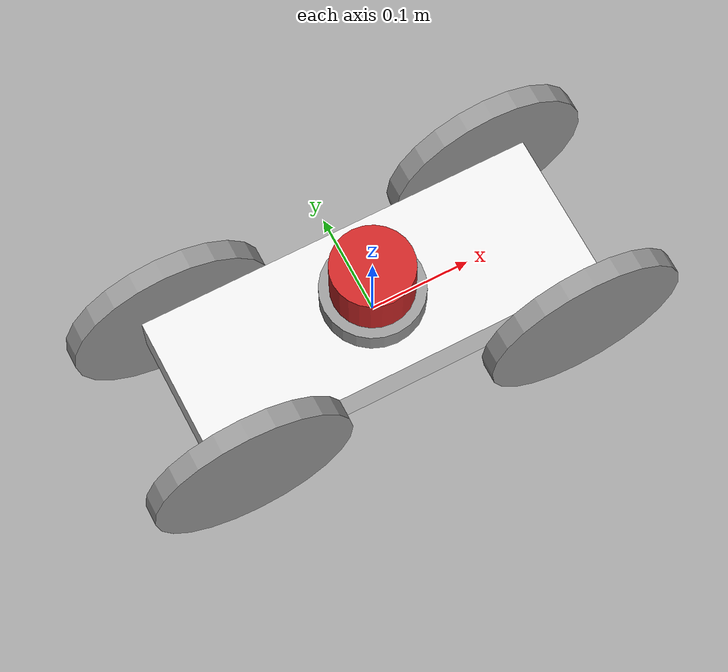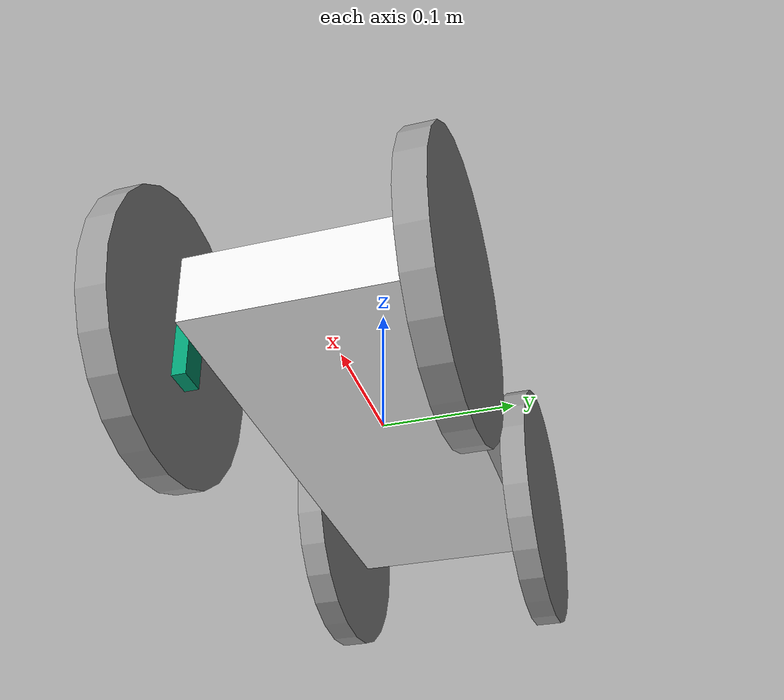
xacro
<?xml version="1.0"?>
<robot xmlns:xacro="http://www.ros.org/wiki/xacro" name="rover">
  <xacro:property name="wheel_radius" value="0.10" />
  <xacro:property name="wheel_width" value="0.02" />
  <xacro:property name="body_height" value="0.05" />
  <xacro:property name="body_width" value="0.15" />
  <xacro:property name="body_length" value="0.4" />
  <xacro:property name="leg_height" value="0.05" />
  <xacro:property name="leg_width" value="0.02" />
  <xacro:property name="leg_length" value="0.02" />

 <gazebo reference="body">
    <material>Gazebo/White</material>
    <mu1>0.2</mu1>
    <mu2>0.2</mu2>
 </gazebo>

  <link name="body">
    <visual>
      <geometry>
        <box size="${body_length} ${body_width} ${body_height}"/>
      </geometry>
    </visual>

    <collision>
      <geometry>
        <box size="${body_length} ${body_width} ${body_height}"/>
      </geometry>
    </collision>

    <inertial>
      <mass value="5"/>
      <inertia ixx="${(5/12) * (body_width * body_width + body_height* body_height)}" ixy="0" ixz="0" iyy="${(5/12) * (body_length * body_length + body_height * body_height)}" iyz="0" izz="${(5/12) * (body_width * body_width + body_length * body_length)}" />
    </inertial>
  </link>

  <link name="lLeg">
    <visual>
      <geometry>
        <box size="${leg_length} ${leg_width} ${leg_height}"/>
      </geometry>
    </visual>

    <collision>
      <geometry>
        <box size="${leg_length} ${leg_width} ${leg_height}"/>
      </geometry>
    </collision>

    <inertial>
      <mass value="1"/>
      <inertia ixx="${(1/12) * (leg_width * leg_width + leg_height* leg_height)}" ixy="0" ixz="0" iyy="${(1/12) * (leg_length * leg_length + leg_height * leg_height)}" iyz="0" izz="${(1/12) * (leg_width * leg_width + leg_length * leg_length)}" />
    </inertial>
  </link>

  <joint name="lDifJoint" type="continuous">
    <parent link="body"/>
    <child link="lLeg"/>
    <axis xyz="0 0 1"/>
    <origin xyz="${body_length/2 - 0.03} ${body_width/2 + wheel_width/2} -${body_height/2}"/>
  </joint>

  <link name="rLeg">
    <visual>
      <geometry>
        <box size="${leg_length} ${leg_width} ${leg_height}"/>
      </geometry>
    </visual>

    <collision>
      <geometry>
        <box size="${leg_length} ${leg_width} ${leg_height}"/>
      </geometry>
    </collision>

    <inertial>
      <mass value="1"/>
      <inertia ixx="${(1/12) * (leg_width * leg_width + leg_height* leg_height)}" ixy="0" ixz="0" iyy="${(1/12) * (leg_length * leg_length + leg_height * leg_height)}" iyz="0" izz="${(1/12) * (leg_width * leg_width + leg_length * leg_length)}" />
    </inertial>
  </link>

  <joint name="rDifJoint" type="continuous">
    <parent link="body"/>
    <child link="rLeg"/>
    <axis xyz="0 0 1"/>
    <origin xyz="${body_length/2 - 0.03} -${body_width/2 + wheel_width/2} -${body_height/2}"/>
  </joint>

  <xacro:macro name="wheel_link" params="name radius width mass">
    <gazebo reference="${name}">
      <material>Gazebo/Grey</material>
      <mu1>0.84</mu1>
      <mu2>0.84</mu2>
   </gazebo>

    <link name="${name}">
      <visual>
        <geometry>
          <cylinder length="${width}" radius="${radius}"/>
        </geometry>
      </visual>

      <collision>
        <geometry>
          <cylinder length="${width}" radius="${radius}"/>
        </geometry>
      </collision>

      <inertial>
        <mass value="${mass}"/>
        <inertia ixx="${(1/12) * mass * (3 * radius * radius + width * width)}" ixy="0" ixz="0" iyy="${(1/12) * mass * (3 * radius * radius + width * width)}" iyz="0" izz="${(1/2) * mass * radius * radius}"/>
      </inertial>
    </link>
  </xacro:macro>

  <xacro:wheel_link name="wFL" radius="${wheel_radius}" width="${wheel_width}" mass="2"/>

  <joint name="jFL" type="continuous">
    <parent link="lLeg"/>
    <child link="wFL"/>
    <axis xyz="0 0 1"/>
    <origin xyz="0 ${leg_width/2} ${leg_length/2}" rpy="${pi/2} 0 0" />
    <dynamics friction="0.5"/>
  </joint>

  <xacro:wheel_link name="wBL" radius="${wheel_radius}" width="${wheel_width}" mass="2"/>

  <joint name="jBL" type="continuous">
    <parent link="body"/>
    <child link="wBL"/>
    <axis xyz="0 0 1"/>
    <origin xyz="-${body_length/2 - 0.03} ${body_width/2 + wheel_width/2} 0" rpy="${pi/2} 0 0" />
    <dynamics friction="0.5"/>
  </joint>

  <xacro:wheel_link name="wFR" radius="${wheel_radius}" width="${wheel_width}" mass="2"/>

  <joint name="jFR" type="continuous">
    <parent link="rLeg"/>
    <child link="wFR"/>
    <axis xyz="0 0 1"/>
    <origin xyz="0 -${leg_width/2} ${leg_length/2}" rpy="${pi/2} 0 0" />
    <dynamics friction="0.5"/>
  </joint>

  <xacro:wheel_link name="wBR" radius="${wheel_radius}" width="${wheel_width}" mass="2"/>

  <joint name="jBR" type="continuous">
    <parent link="body"/>
    <child link="wBR"/>
    <axis xyz="0 0 1"/>
    <origin xyz="-${body_length/2 - 0.03} -${body_width/2 + wheel_width/2} 0" rpy="${pi/2} 0 0" />
    <dynamics friction="0.5"/>
  </joint>

  <xacro:include filename="$(find robot_tutorial_3)/urdf/lidar.urdf.xacro"/>
  <joint name="lidarGlue" type="fixed">
    <parent link="body"/>
    <child link="laz_base"/>
    <origin xyz="0 0 ${body_height/2}"/>
  </joint>

  <gazebo>
    <plugin name="rover_plugin" filename="libnew_rover_plugin.so"> </plugin>
  </gazebo>
</robot>

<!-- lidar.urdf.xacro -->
<robot xmlns:xacro="http://www.ros.org/wiki/xacro" name="lazDar">
  <xacro:property name="base_radius" value="0.05"/>
  <xacro:property name="base_height" value="0.05"/>
  <xacro:property name="laz_radius" value="0.04"/>
  <xacro:property name="laz_height" value="0.1"/>

  <gazebo reference="laz_base">
    <material>Gazebo/Grey</material>
    <mu1>0.2</mu1>
    <mu2>0.2</mu2>
  </gazebo>

  <link name="laz_base">
    <visual>
      <geometry>
        <cylinder length="${base_height}" radius="${base_radius}"/>
      </geometry>
    </visual>

    <collision>
      <geometry>
        <cylinder length="${base_height}" radius="${base_radius}"/>
      </geometry>
    </collision>

    <inertial>
      <mass value="0.1"/>
      <inertia ixx="${(1/12) * 0.1 * (3 * base_radius * base_radius + base_height * base_height)}" ixy="0" ixz="0" iyy="${(1/12) * 0.1 * (3 * base_radius * base_radius + base_height * base_height)}" iyz="0" izz="${(1/2) * 0.1 * base_radius * base_radius}"/>
    </inertial>
  </link>

  <gazebo reference="laz_rot">
    <material>Gazebo/RedGlow</material>
    <mu1>0.2</mu1>
    <mu2>0.2</mu2>

    <sensor type="ray" name="laz">
       <always_on>true</always_on>
       <pose>${laz_radius} 0 ${laz_height/4} ${pi/2} 0 0</pose>
       <visualize>true</visualize>
       <update_rate>30</update_rate>
       <ray>
         <noise>
           <type>gaussian</type>
           <mean>0.0</mean>
           <stddev>0.01</stddev>
         </noise>

         <scan>
           <horizontal>
             <samples>15</samples>
             <resolution>1</resolution>
             <min_angle>-${pi/8}</min_angle>
             <max_angle>${pi/8}</max_angle>
           </horizontal>
           <vertical>
             <samples>1</samples>
             <resolution>1</resolution>
             <min_angle>-0.15</min_angle>
             <max_angle>0.15</max_angle>
           </vertical>
         </scan>
          <range>
           <min>0.05</min>
           <max>15</max>
           <resolution>0.02</resolution>
         </range>
      </ray>

     <plugin name="laz_sensor_plugin" filename="liblaz_sensor_plugin.so"> </plugin>
   </sensor>
  </gazebo>

  <link name="laz_rot">
    <visual>
      <geometry>
        <cylinder length="${laz_height}" radius="${laz_radius}"/>
      </geometry>
    </visual>

    <collision>
      <geometry>
        <cylinder length="${laz_height}" radius="${laz_radius}"/>
      </geometry>
    </collision>

    <inertial>
      <mass value="0.1"/>
      <inertia ixx="${(1/12) * 0.1 * (3 * laz_radius * laz_radius + laz_height * laz_height)}" ixy="0" ixz="0" iyy="${(1/12) * 0.1 * (3 * laz_radius * laz_radius + laz_height * laz_height)}" iyz="0" izz="${(1/2) * 0.1 * laz_radius * laz_radius}"/>
    </inertial>
  </link>

  <joint name="lazRot" type="continuous">
    <parent link="laz_base"/>
    <child link="laz_rot"/>
    <axis xyz="0 0 1"/>
    <origin xyz = "0 0 ${base_height/2}"/>
    <dynamics friction="0.1"/>
  </joint>
</robot>
